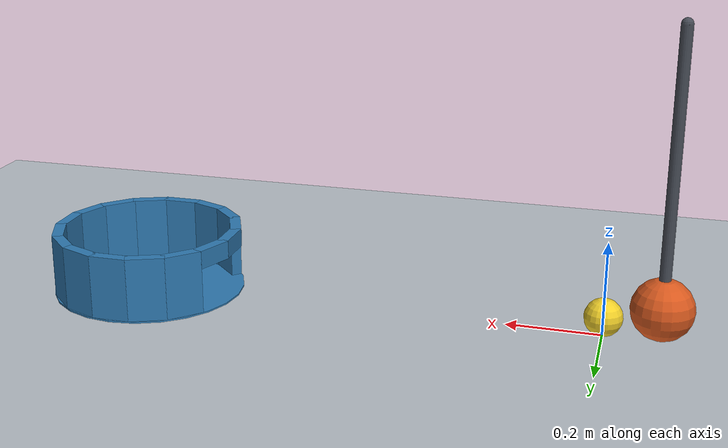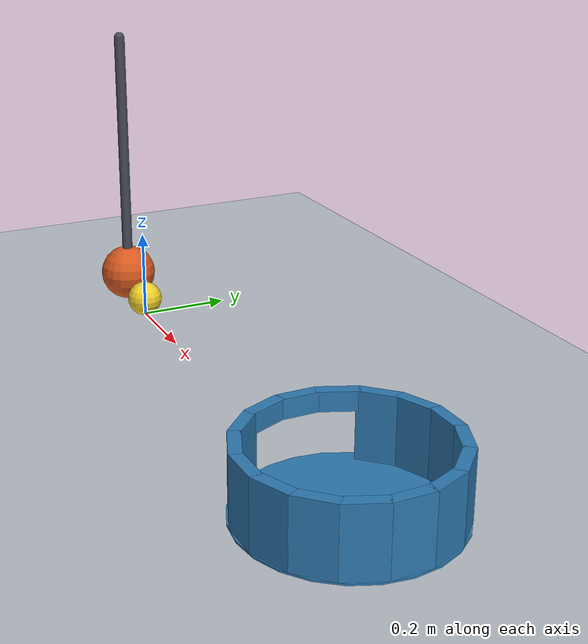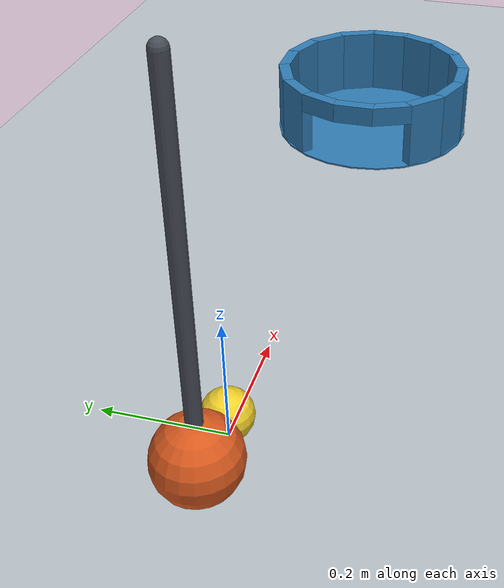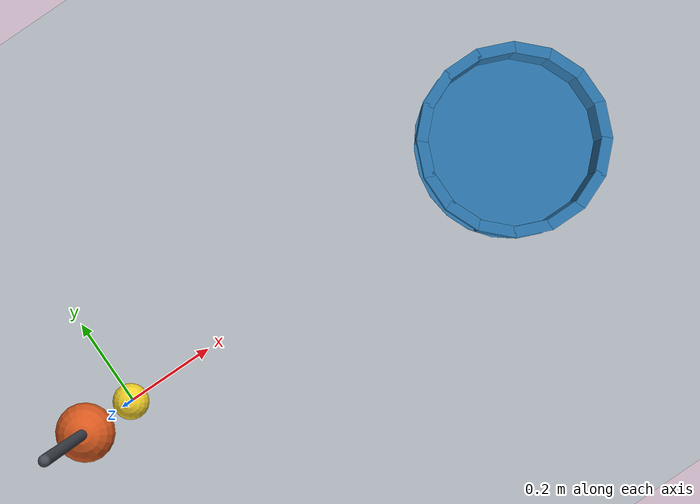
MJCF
<mujoco model="pendulum_ball_and_cup">
  <compiler angle="degree" autolimits="true"/>
  <option timestep="0.002" gravity="0 0 -9.81" integrator="implicitfast" solver="Newton" iterations="100" tolerance="1e-10"/>
  <size njmax="1000" nconmax="200"/>
  <visual>
    <global azimuth="125" elevation="-22"/>
  </visual>

  <worldbody>
    <light name="overhead" pos="0.5 -1 3" dir="0 0 -1" diffuse="0.8 0.8 0.8"/>
    <camera name="overview" pos="0.5 -3 1.7" xyaxes="1 0 0 0 0.45 0.893"/>

    <geom name="floor" type="plane" size="3 2 0.1" pos="0 0 0" rgba="0.72 0.75 0.78 1" condim="6" friction="0.3 0.002 0.0002" solref="0.006 1" solimp="0.95 0.99 0.001"/>

    <!-- Gravity releases the raised pendulum; its bob strikes toward +x. -->
    <body name="pendulum" pos="-0.115 0 0.67">
      <joint name="pendulum_hinge" type="hinge" axis="0 1 0" damping="0.002" frictionloss="0.0002"/>
      <geom name="pendulum_rod" type="capsule" fromto="0 0 -0.025 0 0 -0.54" size="0.012" mass="0.01" rgba="0.28 0.30 0.34 1" friction="0.2 0.002 0.0002"/>
      <geom name="pendulum_bob" type="sphere" pos="0 0 -0.6" size="0.065" mass="0.22" rgba="0.85 0.35 0.12 1" condim="6" friction="0.2 0.002 0.0002" solref="0.006 1" solimp="0.95 0.99 0.001"/>
    </body>

    <body name="ball" pos="0 0 0.04">
      <freejoint name="ball_free"/>
      <geom name="ball" type="sphere" size="0.04" mass="0.06" rgba="0.95 0.82 0.16 1" condim="6" friction="0.3 0.002 0.0002" solref="0.006 1" solimp="0.95 0.99 0.001"/>
    </body>

    <body name="cup" pos="1 0 0">
      <geom name="cup_base" type="cylinder" pos="0 0 -0.003" size="0.21 0.005" rgba="0.18 0.48 0.70 1" condim="6" friction="0.8 0.01 0.012" solref="0.008 1" solimp="0.95 0.99 0.001"/>

      <geom name="cup_wall_00" type="box" pos="0.193 0 0.071" euler="0 0 0" size="0.012 0.041 0.069" rgba="0.18 0.48 0.70 1" condim="6" friction="0.8 0.01 0.012" solref="0.008 1"/>
      <geom name="cup_wall_01" type="box" pos="0.178309 0.073858 0.071" euler="0 0 22.5" size="0.012 0.041 0.069" rgba="0.18 0.48 0.70 1" condim="6" friction="0.8 0.01 0.012" solref="0.008 1"/>
      <geom name="cup_wall_02" type="box" pos="0.136471 0.136471 0.071" euler="0 0 45" size="0.012 0.041 0.069" rgba="0.18 0.48 0.70 1" condim="6" friction="0.8 0.01 0.012" solref="0.008 1"/>
      <geom name="cup_wall_03" type="box" pos="0.073858 0.178309 0.071" euler="0 0 67.5" size="0.012 0.041 0.069" rgba="0.18 0.48 0.70 1" condim="6" friction="0.8 0.01 0.012" solref="0.008 1"/>
      <geom name="cup_wall_04" type="box" pos="0 0.193 0.071" euler="0 0 90" size="0.012 0.041 0.069" rgba="0.18 0.48 0.70 1" condim="6" friction="0.8 0.01 0.012" solref="0.008 1"/>
      <geom name="cup_wall_05" type="box" pos="-0.073858 0.178309 0.071" euler="0 0 112.5" size="0.012 0.041 0.069" rgba="0.18 0.48 0.70 1" condim="6" friction="0.8 0.01 0.012" solref="0.008 1"/>
      <geom name="cup_wall_06" type="box" pos="-0.136471 0.136471 0.071" euler="0 0 135" size="0.012 0.041 0.069" rgba="0.18 0.48 0.70 1" condim="6" friction="0.8 0.01 0.012" solref="0.008 1"/>

      <geom name="cup_entrance_top_07" type="box" pos="-0.178309 0.073858 0.12" euler="0 0 157.5" size="0.012 0.041 0.02" rgba="0.18 0.48 0.70 1" condim="6" friction="0.8 0.01 0.012" solref="0.008 1"/>
      <geom name="cup_entrance_top_08" type="box" pos="-0.193 0 0.12" euler="0 0 180" size="0.012 0.041 0.02" rgba="0.18 0.48 0.70 1" condim="6" friction="0.8 0.01 0.012" solref="0.008 1"/>
      <geom name="cup_entrance_top_09" type="box" pos="-0.178309 -0.073858 0.12" euler="0 0 202.5" size="0.012 0.041 0.02" rgba="0.18 0.48 0.70 1" condim="6" friction="0.8 0.01 0.012" solref="0.008 1"/>

      <geom name="cup_wall_10" type="box" pos="-0.136471 -0.136471 0.071" euler="0 0 225" size="0.012 0.041 0.069" rgba="0.18 0.48 0.70 1" condim="6" friction="0.8 0.01 0.012" solref="0.008 1"/>
      <geom name="cup_wall_11" type="box" pos="-0.073858 -0.178309 0.071" euler="0 0 247.5" size="0.012 0.041 0.069" rgba="0.18 0.48 0.70 1" condim="6" friction="0.8 0.01 0.012" solref="0.008 1"/>
      <geom name="cup_wall_12" type="box" pos="0 -0.193 0.071" euler="0 0 270" size="0.012 0.041 0.069" rgba="0.18 0.48 0.70 1" condim="6" friction="0.8 0.01 0.012" solref="0.008 1"/>
      <geom name="cup_wall_13" type="box" pos="0.073858 -0.178309 0.071" euler="0 0 292.5" size="0.012 0.041 0.069" rgba="0.18 0.48 0.70 1" condim="6" friction="0.8 0.01 0.012" solref="0.008 1"/>
      <geom name="cup_wall_14" type="box" pos="0.136471 -0.136471 0.071" euler="0 0 315" size="0.012 0.041 0.069" rgba="0.18 0.48 0.70 1" condim="6" friction="0.8 0.01 0.012" solref="0.008 1"/>
      <geom name="cup_wall_15" type="box" pos="0.178309 -0.073858 0.071" euler="0 0 337.5" size="0.012 0.041 0.069" rgba="0.18 0.48 0.70 1" condim="6" friction="0.8 0.01 0.012" solref="0.008 1"/>
    </body>
  </worldbody>

  <keyframe>
    <key name="start" qpos="0.65 0 0 0.04 1 0 0 0" qvel="0 0 0 0 0 0 0"/>
  </keyframe>
</mujoco>
